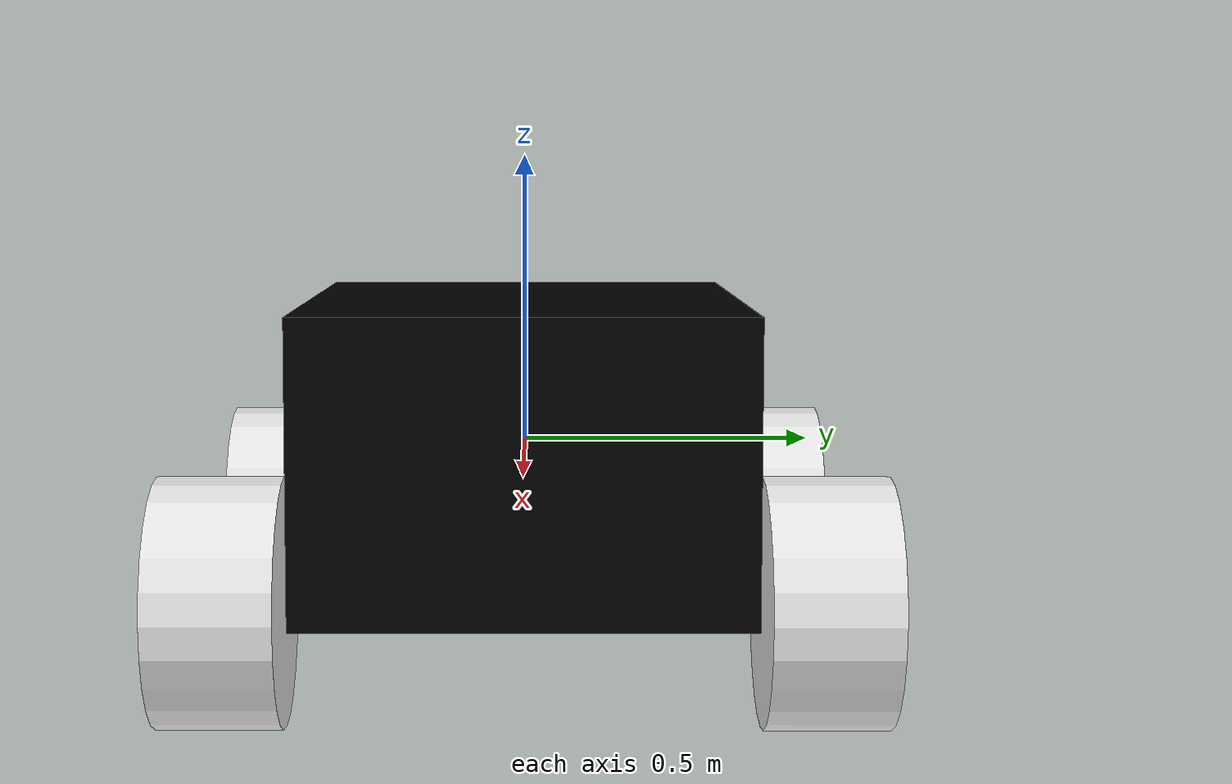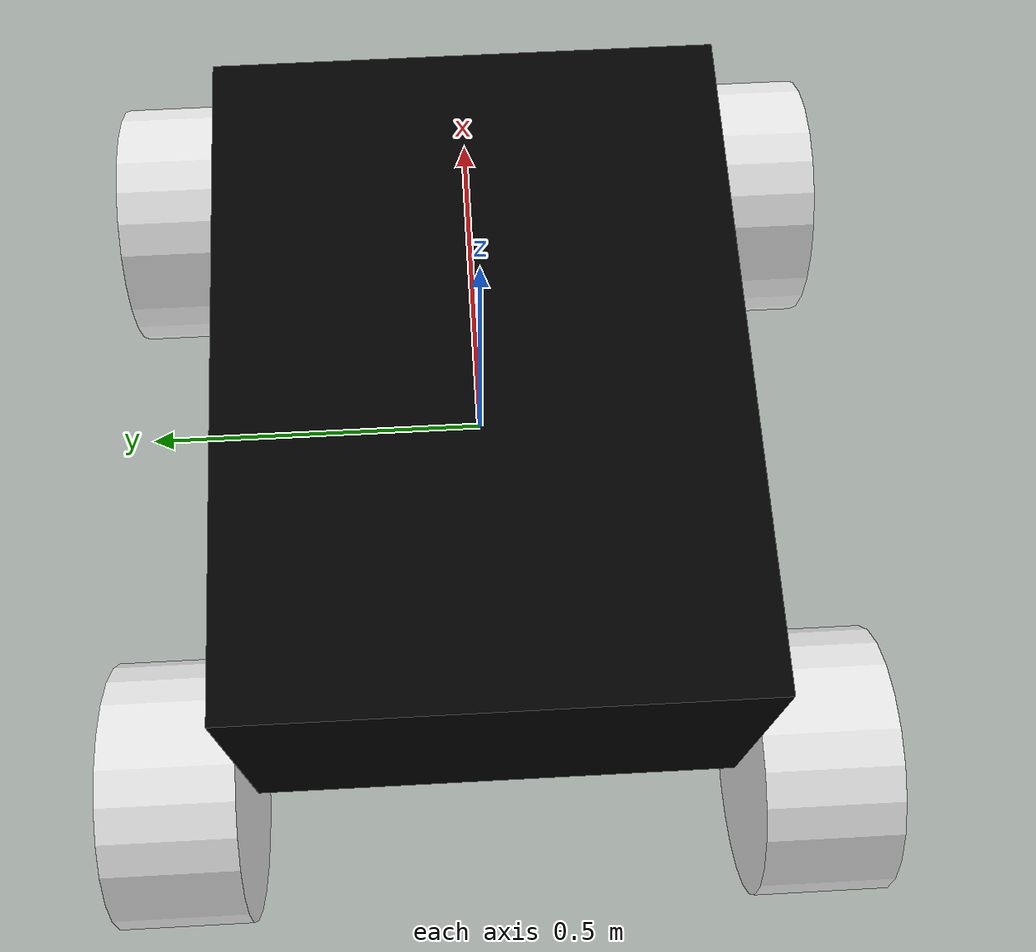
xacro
<?xml version='1.0'?>

<robot name="skid_steer_bot" xmlns:xacro="http://www.ros.org/wiki/xacro">

  <xacro:property name="wheel_radius" value="0.2"/>
  <xacro:property name="wheel_thickness" value="0.2" />
  <xacro:property name="wheel_mass" value="0.2" />
  <xacro:property name="chassis_length" value="1" />
  <xacro:property name="chassis_breadth" value="0.75" />
  <xacro:property name="chassis_height" value="0.5" />
  <xacro:property name="chassis_mass" value="0.5" />

  <xacro:include filename="$(find yobot)/urdf/project.gazebo" />
  <xacro:include filename="$(find yobot)/urdf/materials.xacro" />
  <xacro:include filename="$(find yobot)/urdf/macros.xacro" />

    <link name="chassis">
      <collision>
        <origin xyz="0 0 0" rpy="0 0 0"/>
        <geometry>
        <box size="${chassis_length} ${chassis_breadth} ${chassis_height}"/>
        </geometry>
      </collision>

      <visual>
        <origin xyz="0 0 0" rpy="0 0 0"/>
        <geometry>
          <box size="${chassis_length} ${chassis_breadth} ${chassis_height}"/>
        </geometry>
        <material name="Black"/>
      </visual>

      <inertial>
        <origin xyz="0 0 0" rpy="0 0 0"/>
        <mass value="${chassis_mass}"/>
        <xacro:box_inertia m="${chassis_mass}" x="${chassis_length}" y="${chassis_breadth}" z="${chassis_height}"/>
      </inertial>
  </link>
  <xacro:define_wheel pos_fb="front" pos_lr="left" lr="1" fb="1" radius="${wheel_radius}" thickness="${wheel_thickness}" mass="${wheel_mass}" />
  <xacro:define_wheel pos_fb="front" pos_lr="right" lr="-1" fb="1" radius="${wheel_radius}" thickness="${wheel_thickness}" mass="${wheel_mass}" />
  <xacro:define_wheel pos_fb="back" pos_lr="left" lr="1" fb="-1" radius="${wheel_radius}" thickness="${wheel_thickness}" mass="${wheel_mass}" />
  <xacro:define_wheel pos_fb="back" pos_lr="right" lr="-1" fb="-1" radius="${wheel_radius}" thickness="${wheel_thickness}" mass="${wheel_mass}" />
</robot>

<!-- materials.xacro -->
<robot name="skid_steer_bot" xmlns:xacro="http://www.ros.org/wiki/xacro">
  <material name="Black">
    <color rgba="0.0 0.0 0.0 1.0"/>
  </material>

  <material name="Blue">
    <color rgba="0.0 0.0 0.8 1.0"/>
  </material>

  <material name="Green">
    <color rgba="0.0 0.8 0.0 1.0"/>
  </material>

  <material name="Grey">
    <color rgba="0.2 0.2 0.2 1.0"/>
  </material>

  <material name="Orange">
    <color rgba="${255/255} ${108/255} ${10/255} 1.0"/>
  </material>

  <material name="Brown">
    <color rgba="${222/255} ${207/255} ${195/255} 1.0"/>
  </material>

  <material name="Red">
    <color rgba="0.8 0.0 0.0 1.0"/>
  </material>

  <material name="White">
    <color rgba="1.0 1.0 1.0 1.0"/>
  </material>

</robot>

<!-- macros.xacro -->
<robot name="skid_steer_bot" xmlns:xacro="http://www.ros.org/wiki/xacro">
 <xacro:macro name="cylinder_inertia" params="m r h">
    <inertia ixx="${m * (3 * r * r + h * h) / 12}" ixy="0" ixz="0"
      iyy="${m * (3 * r * r + h * h) / 12}" iyz="0"
      izz="${m * r * r / 2}"
    />
  </xacro:macro>

  <xacro:macro name="box_inertia" params="m x y z">
    <inertia ixx="${m * (y * y + z * z) / 12}" ixy="0" ixz="0"
      iyy="${m * (x * x + z * z) / 12}" iyz="0"
      izz="${m * (x * x + z * z) / 12}"
    />
  </xacro:macro>

  <xacro:macro name="sphere_inertia" params="m r">
    <inertia ixx="${2 * m * r * r / 5}" ixy="0" ixz="0"
      iyy="${2 * m * r * r / 5}" iyz="0"
      izz="${2 * m * r * r / 5}"
    />
  </xacro:macro>

  <xacro:macro name="define_wheel" params="pos_fb pos_lr lr fb radius thickness mass">
    <link name="${pos_fb}_wheel_${pos_lr}">
        <inertial>
            <mass value="${mass}"/>
            <origin rpy="0 ${pi/2} ${pi/2}" xyz="0 0 0"/>
            <xacro:cylinder_inertia m="${mass}" r="${radius}" h="${thickness}" />
        </inertial>
        <collision>
            <origin rpy="0 ${pi/2} ${pi/2}" xyz="0 0 0"/>
            <geometry>
              <cylinder length="${thickness}" radius="${radius}"/>
            </geometry>
        </collision>
        <visual>
            <origin rpy="0 ${pi/2} ${pi/2}" xyz="0 0 0"/>
            <geometry>
              <cylinder length="${thickness}" radius="${radius}"/>
            </geometry>
        </visual>
    </link>

    <joint name="${pos_fb}_wheel_${pos_lr}_hinge" type="continuous">
      <parent link="chassis"/>
      <child link="${pos_fb}_wheel_${pos_lr}"/>
      <origin xyz="${fb*chassis_length/2} ${lr*(thickness/2+chassis_breadth/2)} ${-(radius)}" rpy="0 0 0" />
      <axis xyz="0 1 0" rpy="0 0 0" />
    </joint>
  </xacro:macro>
</robot>
